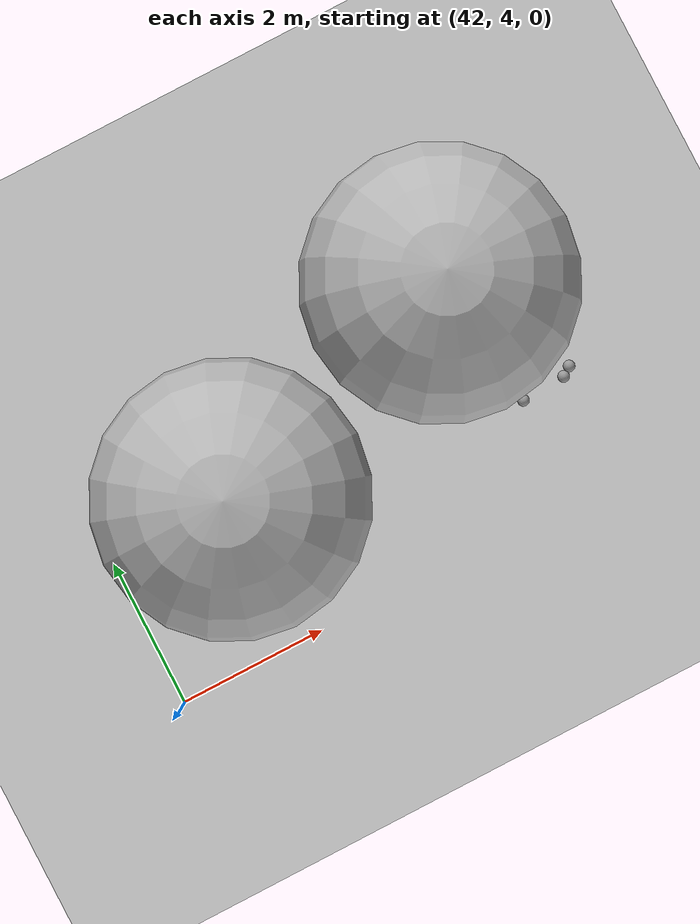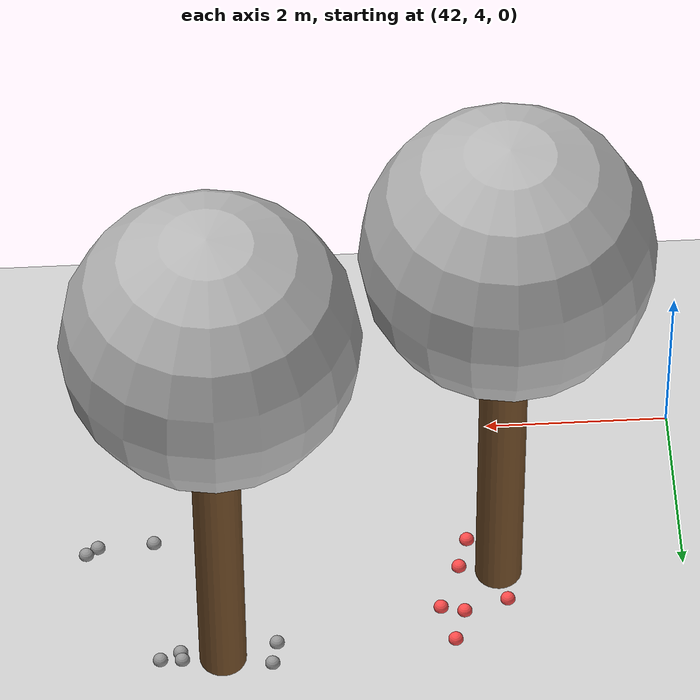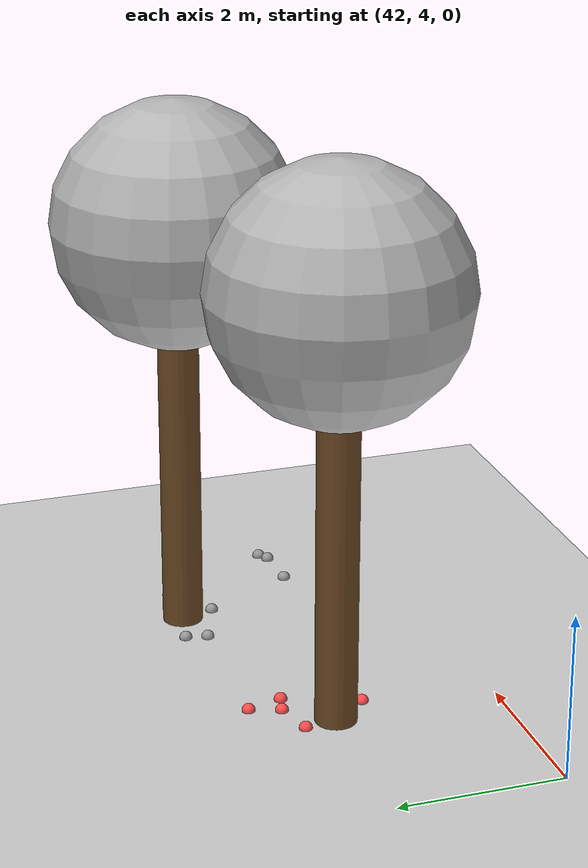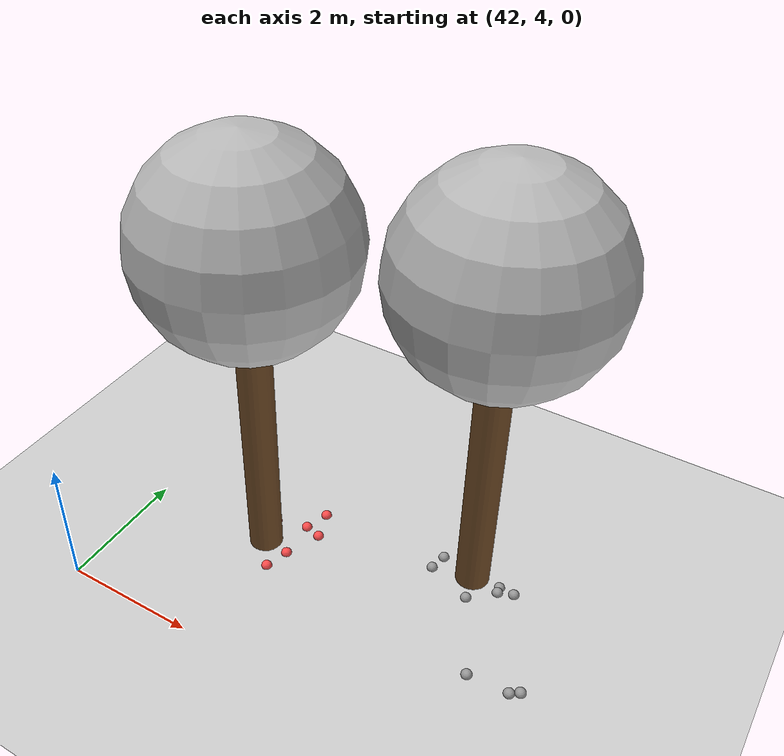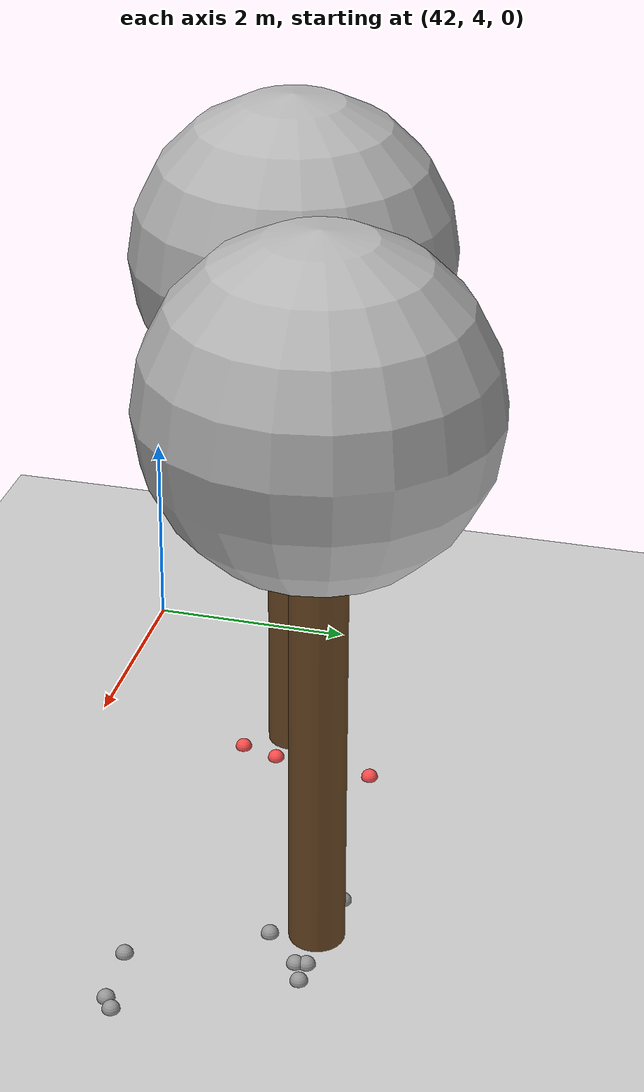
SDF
<sdf version="1.7">
 <world name="default">
  <model name="ground_plane">
   <static>1</static>
   <link name="link">
    <collision name="collision">
     <geometry><plane><normal>0 0 1</normal><size>100 100</size></plane></geometry>
     <surface>
      <contact><collide_bitmask>65535</collide_bitmask></contact>
      <friction><ode><mu>100</mu><mu2>50</mu2></ode></friction>
     </surface>
    </collision>
    <visual name="visual">
     <cast_shadows>0</cast_shadows>
     <geometry><plane><normal>0 0 1</normal><size>100 100</size></plane></geometry>
     <material>
      <script><uri>file://media/materials/scripts/gazebo.material</uri><name>Gazebo/Grey</name></script>
     </material>
    </visual>
   </link>
  </model>
  <model name="tree_simple_81">
   <static>1</static>
   <link name="link">
    <pose>0 0 0.1 0 -0 0</pose>
    <inertial>
     <mass>666</mass>
     <inertia>
      <ixx>0.0861167</ixx>
      <ixy>0</ixy>
      <ixz>0</ixz>
      <iyy>0.0861167</iyy>
      <iyz>0</iyz>
      <izz>0.0861167</izz>
     </inertia>
    </inertial>
    <collision name="collision_trunk">
     <pose>0 0 2 0 -0 0</pose>
     <geometry><cylinder><radius>0.25</radius><length>4</length></cylinder></geometry>
     <surface>
      <contact>
       <poissons_ratio>0.347</poissons_ratio>
       <elastic_modulus>8.8e+09</elastic_modulus>
       <ode><kp>100000</kp><kd>100</kd><max_vel>100</max_vel><min_depth>0.001</min_depth></ode>
      </contact>
      <friction>
       <torsional>
        <coefficient>1</coefficient>
        <use_patch_radius>0</use_patch_radius>
        <surface_radius>0.01</surface_radius>
       </torsional>
      </friction>
     </surface>
    </collision>
    <collision name="collision_treetop">
     <pose>0 0 5.2 0 -0 0</pose>
     <geometry><sphere><radius>1.5</radius></sphere></geometry>
     <surface>
      <contact>
       <poissons_ratio>0.347</poissons_ratio>
       <elastic_modulus>8.8e+09</elastic_modulus>
       <ode><kp>100000</kp><kd>100</kd><max_vel>100</max_vel><min_depth>0.001</min_depth></ode>
      </contact>
      <friction>
       <torsional>
        <coefficient>1</coefficient>
        <use_patch_radius>0</use_patch_radius>
        <surface_radius>0.01</surface_radius>
       </torsional>
      </friction>
     </surface>
    </collision>
    <visual name="trunk">
     <pose>0 0 2 0 -0 0</pose>
     <geometry><cylinder><radius>0.25</radius><length>4</length></cylinder></geometry>
     <material>
      <script>
       <uri>model://tree_simple/scripts</uri>
       <uri>model://tree_simple/materials/textures</uri>
       <name>TreeSimple/Trunk</name>
      </script>
     </material>
    </visual>
    <visual name="treetop">
     <pose>0 0 5.2 0 -0 0</pose>
     <geometry><sphere><radius>1.5</radius></sphere></geometry>
     <material>
      <script>
       <uri>model://tree_simple/scripts</uri>
       <uri>model://tree_simple/materials/textures</uri>
       <name>TreeSimple/Treetop</name>
      </script>
     </material>
    </visual>
   </link>
   <pose>47 7 -0.1 0 -0 0</pose>
  </model>
  <model name="tree_simple_82">
   <static>1</static>
   <link name="link">
    <pose>0 0 0.1 0 -0 0</pose>
    <inertial>
     <mass>666</mass>
     <inertia>
      <ixx>0.0861167</ixx>
      <ixy>0</ixy>
      <ixz>0</ixz>
      <iyy>0.0861167</iyy>
      <iyz>0</iyz>
      <izz>0.0861167</izz>
     </inertia>
    </inertial>
    <collision name="collision_trunk">
     <pose>0 0 2 0 -0 0</pose>
     <geometry><cylinder><radius>0.25</radius><length>4</length></cylinder></geometry>
     <surface>
      <contact>
       <poissons_ratio>0.347</poissons_ratio>
       <elastic_modulus>8.8e+09</elastic_modulus>
       <ode><kp>100000</kp><kd>100</kd><max_vel>100</max_vel><min_depth>0.001</min_depth></ode>
      </contact>
      <friction>
       <torsional>
        <coefficient>1</coefficient>
        <use_patch_radius>0</use_patch_radius>
        <surface_radius>0.01</surface_radius>
       </torsional>
      </friction>
     </surface>
    </collision>
    <collision name="collision_treetop">
     <pose>0 0 5.2 0 -0 0</pose>
     <geometry><sphere><radius>1.5</radius></sphere></geometry>
     <surface>
      <contact>
       <poissons_ratio>0.347</poissons_ratio>
       <elastic_modulus>8.8e+09</elastic_modulus>
       <ode><kp>100000</kp><kd>100</kd><max_vel>100</max_vel><min_depth>0.001</min_depth></ode>
      </contact>
      <friction>
       <torsional>
        <coefficient>1</coefficient>
        <use_patch_radius>0</use_patch_radius>
        <surface_radius>0.01</surface_radius>
       </torsional>
      </friction>
     </surface>
    </collision>
    <visual name="trunk">
     <pose>0 0 2 0 -0 0</pose>
     <geometry><cylinder><radius>0.25</radius><length>4</length></cylinder></geometry>
     <material>
      <script>
       <uri>model://tree_simple/scripts</uri>
       <uri>model://tree_simple/materials/textures</uri>
       <name>TreeSimple/Trunk</name>
      </script>
     </material>
    </visual>
    <visual name="treetop">
     <pose>0 0 5.2 0 -0 0</pose>
     <geometry><sphere><radius>1.5</radius></sphere></geometry>
     <material>
      <script>
       <uri>model://tree_simple/scripts</uri>
       <uri>model://tree_simple/materials/textures</uri>
       <name>TreeSimple/Treetop</name>
      </script>
     </material>
    </visual>
   </link>
   <pose>44 6 -0.1 0 -0 0</pose>
  </model>
  <model name="seed_black_72">
   <link name="link">
    <inertial>
     <mass>1</mass>
     <inertia><ixx>0.1</ixx><ixy>0</ixy><ixz>0</ixz><iyy>0.1</iyy><iyz>0</iyz><izz>0.1</izz></inertia>
    </inertial>
    <visual name="visual">
     <geometry><sphere><radius>0.08</radius></sphere></geometry>
     <material>
      <script><name>Gazebo/Grey</name><uri>file://media/materials/scripts/gazebo.material</uri></script>
      <shader type="pixel"><normal_map>__default__</normal_map></shader>
      <ambient>0 0 0 1</ambient>
      <diffuse>0.7 0.7 0.7 1</diffuse>
      <specular>0.01 0.01 0.01 1</specular>
      <emissive>0 0 0 1</emissive>
     </material>
    </visual>
    <collision name="collision">
     <geometry><sphere><radius>0.0005</radius></sphere></geometry>
     <surface>
      <friction>
       <ode><mu>1</mu><mu2>1</mu2><fdir1>0 0 0</fdir1><slip1>0</slip1><slip2>0</slip2></ode>
       <torsional>
        <coefficient>1</coefficient>
        <patch_radius>0</patch_radius>
        <surface_radius>0</surface_radius>
        <use_patch_radius>1</use_patch_radius>
        <ode><slip>0</slip></ode>
       </torsional>
      </friction>
      <bounce><restitution_coefficient>0</restitution_coefficient><threshold>1e+06</threshold></bounce>
      <contact>
       <collide_without_contact>0</collide_without_contact>
       <collide_without_contact_bitmask>1</collide_without_contact_bitmask>
       <collide_bitmask>1</collide_bitmask>
       <ode>
        <soft_cfm>0</soft_cfm>
        <soft_erp>0.2</soft_erp>
        <kp>1e+13</kp>
        <kd>1</kd>
        <max_vel>0.01</max_vel>
        <min_depth>0</min_depth>
       </ode>
       <bullet>
        <split_impulse>1</split_impulse>
        <split_impulse_penetration_threshold>-0.01</split_impulse_penetration_threshold>
        <soft_cfm>0</soft_cfm>
        <soft_erp>0.2</soft_erp>
        <kp>1e+13</kp>
        <kd>1</kd>
       </bullet>
      </contact>
     </surface>
    </collision>
   </link>
   <static>0</static>
   <pose>47.4486 6.92046 0.0005 0 -0 0</pose>
  </model>
  <model name="seed_black_73">
   <link name="link">
    <inertial>
     <mass>1</mass>
     <inertia><ixx>0.1</ixx><ixy>0</ixy><ixz>0</ixz><iyy>0.1</iyy><iyz>0</iyz><izz>0.1</izz></inertia>
    </inertial>
    <visual name="visual">
     <geometry><sphere><radius>0.08</radius></sphere></geometry>
     <material>
      <script><name>Gazebo/Grey</name><uri>file://media/materials/scripts/gazebo.material</uri></script>
      <shader type="pixel"><normal_map>__default__</normal_map></shader>
      <ambient>0 0 0 1</ambient>
      <diffuse>0.7 0.7 0.7 1</diffuse>
      <specular>0.01 0.01 0.01 1</specular>
      <emissive>0 0 0 1</emissive>
     </material>
    </visual>
    <collision name="collision">
     <geometry><sphere><radius>0.0005</radius></sphere></geometry>
     <surface>
      <friction>
       <ode><mu>1</mu><mu2>1</mu2><fdir1>0 0 0</fdir1><slip1>0</slip1><slip2>0</slip2></ode>
       <torsional>
        <coefficient>1</coefficient>
        <patch_radius>0</patch_radius>
        <surface_radius>0</surface_radius>
        <use_patch_radius>1</use_patch_radius>
        <ode><slip>0</slip></ode>
       </torsional>
      </friction>
      <bounce><restitution_coefficient>0</restitution_coefficient><threshold>1e+06</threshold></bounce>
      <contact>
       <collide_without_contact>0</collide_without_contact>
       <collide_without_contact_bitmask>1</collide_without_contact_bitmask>
       <collide_bitmask>1</collide_bitmask>
       <ode>
        <soft_cfm>0</soft_cfm>
        <soft_erp>0.2</soft_erp>
        <kp>1e+13</kp>
        <kd>1</kd>
        <max_vel>0.01</max_vel>
        <min_depth>0</min_depth>
       </ode>
       <bullet>
        <split_impulse>1</split_impulse>
        <split_impulse_penetration_threshold>-0.01</split_impulse_penetration_threshold>
        <soft_cfm>0</soft_cfm>
        <soft_erp>0.2</soft_erp>
        <kp>1e+13</kp>
        <kd>1</kd>
       </bullet>
      </contact>
     </surface>
    </collision>
   </link>
   <static>0</static>
   <pose>47.434 7.01858 0.0005 0 -0 0</pose>
  </model>
  <model name="seed_black_74">
   <link name="link">
    <inertial>
     <mass>1</mass>
     <inertia><ixx>0.1</ixx><ixy>0</ixy><ixz>0</ixz><iyy>0.1</iyy><iyz>0</iyz><izz>0.1</izz></inertia>
    </inertial>
    <visual name="visual">
     <geometry><sphere><radius>0.08</radius></sphere></geometry>
     <material>
      <script><name>Gazebo/Grey</name><uri>file://media/materials/scripts/gazebo.material</uri></script>
      <shader type="pixel"><normal_map>__default__</normal_map></shader>
      <ambient>0 0 0 1</ambient>
      <diffuse>0.7 0.7 0.7 1</diffuse>
      <specular>0.01 0.01 0.01 1</specular>
      <emissive>0 0 0 1</emissive>
     </material>
    </visual>
    <collision name="collision">
     <geometry><sphere><radius>0.0005</radius></sphere></geometry>
     <surface>
      <friction>
       <ode><mu>1</mu><mu2>1</mu2><fdir1>0 0 0</fdir1><slip1>0</slip1><slip2>0</slip2></ode>
       <torsional>
        <coefficient>1</coefficient>
        <patch_radius>0</patch_radius>
        <surface_radius>0</surface_radius>
        <use_patch_radius>1</use_patch_radius>
        <ode><slip>0</slip></ode>
       </torsional>
      </friction>
      <bounce><restitution_coefficient>0</restitution_coefficient><threshold>1e+06</threshold></bounce>
      <contact>
       <collide_without_contact>0</collide_without_contact>
       <collide_without_contact_bitmask>1</collide_without_contact_bitmask>
       <collide_bitmask>1</collide_bitmask>
       <ode>
        <soft_cfm>0</soft_cfm>
        <soft_erp>0.2</soft_erp>
        <kp>1e+13</kp>
        <kd>1</kd>
        <max_vel>0.01</max_vel>
        <min_depth>0</min_depth>
       </ode>
       <bullet>
        <split_impulse>1</split_impulse>
        <split_impulse_penetration_threshold>-0.01</split_impulse_penetration_threshold>
        <soft_cfm>0</soft_cfm>
        <soft_erp>0.2</soft_erp>
        <kp>1e+13</kp>
        <kd>1</kd>
       </bullet>
      </contact>
     </surface>
    </collision>
   </link>
   <static>0</static>
   <pose>46.4194 6.84191 0.0005 0 -0 0</pose>
  </model>
  <model name="seed_black_75">
   <link name="link">
    <inertial>
     <mass>1</mass>
     <inertia><ixx>0.1</ixx><ixy>0</ixy><ixz>0</ixz><iyy>0.1</iyy><iyz>0</iyz><izz>0.1</izz></inertia>
    </inertial>
    <visual name="visual">
     <geometry><sphere><radius>0.08</radius></sphere></geometry>
     <material>
      <script><name>Gazebo/Grey</name><uri>file://media/materials/scripts/gazebo.material</uri></script>
      <shader type="pixel"><normal_map>__default__</normal_map></shader>
      <ambient>0 0 0 1</ambient>
      <diffuse>0.7 0.7 0.7 1</diffuse>
      <specular>0.01 0.01 0.01 1</specular>
      <emissive>0 0 0 1</emissive>
     </material>
    </visual>
    <collision name="collision">
     <geometry><sphere><radius>0.0005</radius></sphere></geometry>
     <surface>
      <friction>
       <ode><mu>1</mu><mu2>1</mu2><fdir1>0 0 0</fdir1><slip1>0</slip1><slip2>0</slip2></ode>
       <torsional>
        <coefficient>1</coefficient>
        <patch_radius>0</patch_radius>
        <surface_radius>0</surface_radius>
        <use_patch_radius>1</use_patch_radius>
        <ode><slip>0</slip></ode>
       </torsional>
      </friction>
      <bounce><restitution_coefficient>0</restitution_coefficient><threshold>1e+06</threshold></bounce>
      <contact>
       <collide_without_contact>0</collide_without_contact>
       <collide_without_contact_bitmask>1</collide_without_contact_bitmask>
       <collide_bitmask>1</collide_bitmask>
       <ode>
        <soft_cfm>0</soft_cfm>
        <soft_erp>0.2</soft_erp>
        <kp>1e+13</kp>
        <kd>1</kd>
        <max_vel>0.01</max_vel>
        <min_depth>0</min_depth>
       </ode>
       <bullet>
        <split_impulse>1</split_impulse>
        <split_impulse_penetration_threshold>-0.01</split_impulse_penetration_threshold>
        <soft_cfm>0</soft_cfm>
        <soft_erp>0.2</soft_erp>
        <kp>1e+13</kp>
        <kd>1</kd>
       </bullet>
      </contact>
     </surface>
    </collision>
   </link>
   <static>0</static>
   <pose>47.099 6.5959 0.0005 0 -0 0</pose>
  </model>
  <model name="seed_black_76">
   <link name="link">
    <inertial>
     <mass>1</mass>
     <inertia><ixx>0.1</ixx><ixy>0</ixy><ixz>0</ixz><iyy>0.1</iyy><iyz>0</iyz><izz>0.1</izz></inertia>
    </inertial>
    <visual name="visual">
     <geometry><sphere><radius>0.08</radius></sphere></geometry>
     <material>
      <script><name>Gazebo/Grey</name><uri>file://media/materials/scripts/gazebo.material</uri></script>
      <shader type="pixel"><normal_map>__default__</normal_map></shader>
      <ambient>0 0 0 1</ambient>
      <diffuse>0.7 0.7 0.7 1</diffuse>
      <specular>0.01 0.01 0.01 1</specular>
      <emissive>0 0 0 1</emissive>
     </material>
    </visual>
    <collision name="collision">
     <geometry><sphere><radius>0.0005</radius></sphere></geometry>
     <surface>
      <friction>
       <ode><mu>1</mu><mu2>1</mu2><fdir1>0 0 0</fdir1><slip1>0</slip1><slip2>0</slip2></ode>
       <torsional>
        <coefficient>1</coefficient>
        <patch_radius>0</patch_radius>
        <surface_radius>0</surface_radius>
        <use_patch_radius>1</use_patch_radius>
        <ode><slip>0</slip></ode>
       </torsional>
      </friction>
      <bounce><restitution_coefficient>0</restitution_coefficient><threshold>1e+06</threshold></bounce>
      <contact>
       <collide_without_contact>0</collide_without_contact>
       <collide_without_contact_bitmask>1</collide_without_contact_bitmask>
       <collide_bitmask>1</collide_bitmask>
       <ode>
        <soft_cfm>0</soft_cfm>
        <soft_erp>0.2</soft_erp>
        <kp>1e+13</kp>
        <kd>1</kd>
        <max_vel>0.01</max_vel>
        <min_depth>0</min_depth>
       </ode>
       <bullet>
        <split_impulse>1</split_impulse>
        <split_impulse_penetration_threshold>-0.01</split_impulse_penetration_threshold>
        <soft_cfm>0</soft_cfm>
        <soft_erp>0.2</soft_erp>
        <kp>1e+13</kp>
        <kd>1</kd>
       </bullet>
      </contact>
     </surface>
    </collision>
   </link>
   <static>0</static>
   <pose>47.666 7.00919 0.0005 0 -0 0</pose>
  </model>
  <model name="seed_black_77">
   <link name="link">
    <inertial>
     <mass>1</mass>
     <inertia><ixx>0.1</ixx><ixy>0</ixy><ixz>0</ixz><iyy>0.1</iyy><iyz>0</iyz><izz>0.1</izz></inertia>
    </inertial>
    <visual name="visual">
     <geometry><sphere><radius>0.08</radius></sphere></geometry>
     <material>
      <script><name>Gazebo/Grey</name><uri>file://media/materials/scripts/gazebo.material</uri></script>
      <shader type="pixel"><normal_map>__default__</normal_map></shader>
      <ambient>0 0 0 1</ambient>
      <diffuse>0.7 0.7 0.7 1</diffuse>
      <specular>0.01 0.01 0.01 1</specular>
      <emissive>0 0 0 1</emissive>
     </material>
    </visual>
    <collision name="collision">
     <geometry><sphere><radius>0.0005</radius></sphere></geometry>
     <surface>
      <friction>
       <ode><mu>1</mu><mu2>1</mu2><fdir1>0 0 0</fdir1><slip1>0</slip1><slip2>0</slip2></ode>
       <torsional>
        <coefficient>1</coefficient>
        <patch_radius>0</patch_radius>
        <surface_radius>0</surface_radius>
        <use_patch_radius>1</use_patch_radius>
        <ode><slip>0</slip></ode>
       </torsional>
      </friction>
      <bounce><restitution_coefficient>0</restitution_coefficient><threshold>1e+06</threshold></bounce>
      <contact>
       <collide_without_contact>0</collide_without_contact>
       <collide_without_contact_bitmask>1</collide_without_contact_bitmask>
       <collide_bitmask>1</collide_bitmask>
       <ode>
        <soft_cfm>0</soft_cfm>
        <soft_erp>0.2</soft_erp>
        <kp>1e+13</kp>
        <kd>1</kd>
        <max_vel>0.01</max_vel>
        <min_depth>0</min_depth>
       </ode>
       <bullet>
        <split_impulse>1</split_impulse>
        <split_impulse_penetration_threshold>-0.01</split_impulse_penetration_threshold>
        <soft_cfm>0</soft_cfm>
        <soft_erp>0.2</soft_erp>
        <kp>1e+13</kp>
        <kd>1</kd>
       </bullet>
      </contact>
     </surface>
    </collision>
   </link>
   <static>0</static>
   <pose>46.4768 7.10921 0.0005 0 -0 0</pose>
  </model>
  <model name="seed_red_317">
   <link name="link">
    <inertial>
     <mass>1</mass>
     <inertia><ixx>0.1</ixx><ixy>0</ixy><ixz>0</ixz><iyy>0.1</iyy><iyz>0</iyz><izz>0.1</izz></inertia>
    </inertial>
    <visual name="visual">
     <geometry><sphere><radius>0.08</radius></sphere></geometry>
     <material>
      <script><name>Gazebo/Grey</name><uri>file://media/materials/scripts/gazebo.material</uri></script>
      <shader type="pixel"><normal_map>__default__</normal_map></shader>
      <ambient>1 0.3 0.3 1</ambient>
      <diffuse>0.7 0.7 0.7 1</diffuse>
      <specular>0.01 0.01 0.01 1</specular>
      <emissive>0 0 0 1</emissive>
     </material>
    </visual>
    <collision name="collision">
     <geometry><sphere><radius>0.0005</radius></sphere></geometry>
     <surface>
      <friction>
       <ode><mu>1</mu><mu2>1</mu2><fdir1>0 0 0</fdir1><slip1>0</slip1><slip2>0</slip2></ode>
       <torsional>
        <coefficient>1</coefficient>
        <patch_radius>0</patch_radius>
        <surface_radius>0</surface_radius>
        <use_patch_radius>1</use_patch_radius>
        <ode><slip>0</slip></ode>
       </torsional>
      </friction>
      <bounce><restitution_coefficient>0</restitution_coefficient><threshold>1e+06</threshold></bounce>
      <contact>
       <collide_without_contact>0</collide_without_contact>
       <collide_without_contact_bitmask>1</collide_without_contact_bitmask>
       <collide_bitmask>1</collide_bitmask>
       <ode>
        <soft_cfm>0</soft_cfm>
        <soft_erp>0.2</soft_erp>
        <kp>1e+13</kp>
        <kd>1</kd>
        <max_vel>0.01</max_vel>
        <min_depth>0</min_depth>
       </ode>
       <bullet>
        <split_impulse>1</split_impulse>
        <split_impulse_penetration_threshold>-0.01</split_impulse_penetration_threshold>
        <soft_cfm>0</soft_cfm>
        <soft_erp>0.2</soft_erp>
        <kp>1e+13</kp>
        <kd>1</kd>
       </bullet>
      </contact>
     </surface>
    </collision>
   </link>
   <static>0</static>
   <pose>44.515 6.89711 0.0005 0 -0 0</pose>
  </model>
  <model name="seed_red_321">
   <link name="link">
    <inertial>
     <mass>1</mass>
     <inertia><ixx>0.1</ixx><ixy>0</ixy><ixz>0</ixz><iyy>0.1</iyy><iyz>0</iyz><izz>0.1</izz></inertia>
    </inertial>
    <visual name="visual">
     <geometry><sphere><radius>0.08</radius></sphere></geometry>
     <material>
      <script><name>Gazebo/Grey</name><uri>file://media/materials/scripts/gazebo.material</uri></script>
      <shader type="pixel"><normal_map>__default__</normal_map></shader>
      <ambient>1 0.3 0.3 1</ambient>
      <diffuse>0.7 0.7 0.7 1</diffuse>
      <specular>0.01 0.01 0.01 1</specular>
      <emissive>0 0 0 1</emissive>
     </material>
    </visual>
    <collision name="collision">
     <geometry><sphere><radius>0.0005</radius></sphere></geometry>
     <surface>
      <friction>
       <ode><mu>1</mu><mu2>1</mu2><fdir1>0 0 0</fdir1><slip1>0</slip1><slip2>0</slip2></ode>
       <torsional>
        <coefficient>1</coefficient>
        <patch_radius>0</patch_radius>
        <surface_radius>0</surface_radius>
        <use_patch_radius>1</use_patch_radius>
        <ode><slip>0</slip></ode>
       </torsional>
      </friction>
      <bounce><restitution_coefficient>0</restitution_coefficient><threshold>1e+06</threshold></bounce>
      <contact>
       <collide_without_contact>0</collide_without_contact>
       <collide_without_contact_bitmask>1</collide_without_contact_bitmask>
       <collide_bitmask>1</collide_bitmask>
       <ode>
        <soft_cfm>0</soft_cfm>
        <soft_erp>0.2</soft_erp>
        <kp>1e+13</kp>
        <kd>1</kd>
        <max_vel>0.01</max_vel>
        <min_depth>0</min_depth>
       </ode>
       <bullet>
        <split_impulse>1</split_impulse>
        <split_impulse_penetration_threshold>-0.01</split_impulse_penetration_threshold>
        <soft_cfm>0</soft_cfm>
        <soft_erp>0.2</soft_erp>
        <kp>1e+13</kp>
        <kd>1</kd>
       </bullet>
      </contact>
     </surface>
    </collision>
   </link>
   <static>0</static>
   <pose>44.3135 5.56657 0.0005 0 -0 0</pose>
  </model>
  <model name="seed_red_322">
   <link name="link">
    <inertial>
     <mass>1</mass>
     <inertia><ixx>0.1</ixx><ixy>0</ixy><ixz>0</ixz><iyy>0.1</iyy><iyz>0</iyz><izz>0.1</izz></inertia>
    </inertial>
    <visual name="visual">
     <geometry><sphere><radius>0.08</radius></sphere></geometry>
     <material>
      <script><name>Gazebo/Grey</name><uri>file://media/materials/scripts/gazebo.material</uri></script>
      <shader type="pixel"><normal_map>__default__</normal_map></shader>
      <ambient>1 0.3 0.3 1</ambient>
      <diffuse>0.7 0.7 0.7 1</diffuse>
      <specular>0.01 0.01 0.01 1</specular>
      <emissive>0 0 0 1</emissive>
     </material>
    </visual>
    <collision name="collision">
     <geometry><sphere><radius>0.0005</radius></sphere></geometry>
     <surface>
      <friction>
       <ode><mu>1</mu><mu2>1</mu2><fdir1>0 0 0</fdir1><slip1>0</slip1><slip2>0</slip2></ode>
       <torsional>
        <coefficient>1</coefficient>
        <patch_radius>0</patch_radius>
        <surface_radius>0</surface_radius>
        <use_patch_radius>1</use_patch_radius>
        <ode><slip>0</slip></ode>
       </torsional>
      </friction>
      <bounce><restitution_coefficient>0</restitution_coefficient><threshold>1e+06</threshold></bounce>
      <contact>
       <collide_without_contact>0</collide_without_contact>
       <collide_without_contact_bitmask>1</collide_without_contact_bitmask>
       <collide_bitmask>1</collide_bitmask>
       <ode>
        <soft_cfm>0</soft_cfm>
        <soft_erp>0.2</soft_erp>
        <kp>1e+13</kp>
        <kd>1</kd>
        <max_vel>0.01</max_vel>
        <min_depth>0</min_depth>
       </ode>
       <bullet>
        <split_impulse>1</split_impulse>
        <split_impulse_penetration_threshold>-0.01</split_impulse_penetration_threshold>
        <soft_cfm>0</soft_cfm>
        <soft_erp>0.2</soft_erp>
        <kp>1e+13</kp>
        <kd>1</kd>
       </bullet>
      </contact>
     </surface>
    </collision>
   </link>
   <static>0</static>
   <pose>44.3955 6.52679 0.0005 0 -0 0</pose>
  </model>
  <model name="seed_red_323">
   <link name="link">
    <inertial>
     <mass>1</mass>
     <inertia><ixx>0.1</ixx><ixy>0</ixy><ixz>0</ixz><iyy>0.1</iyy><iyz>0</iyz><izz>0.1</izz></inertia>
    </inertial>
    <visual name="visual">
     <geometry><sphere><radius>0.08</radius></sphere></geometry>
     <material>
      <script><name>Gazebo/Grey</name><uri>file://media/materials/scripts/gazebo.material</uri></script>
      <shader type="pixel"><normal_map>__default__</normal_map></shader>
      <ambient>1 0.3 0.3 1</ambient>
      <diffuse>0.7 0.7 0.7 1</diffuse>
      <specular>0.01 0.01 0.01 1</specular>
      <emissive>0 0 0 1</emissive>
     </material>
    </visual>
    <collision name="collision">
     <geometry><sphere><radius>0.0005</radius></sphere></geometry>
     <surface>
      <friction>
       <ode><mu>1</mu><mu2>1</mu2><fdir1>0 0 0</fdir1><slip1>0</slip1><slip2>0</slip2></ode>
       <torsional>
        <coefficient>1</coefficient>
        <patch_radius>0</patch_radius>
        <surface_radius>0</surface_radius>
        <use_patch_radius>1</use_patch_radius>
        <ode><slip>0</slip></ode>
       </torsional>
      </friction>
      <bounce><restitution_coefficient>0</restitution_coefficient><threshold>1e+06</threshold></bounce>
      <contact>
       <collide_without_contact>0</collide_without_contact>
       <collide_without_contact_bitmask>1</collide_without_contact_bitmask>
       <collide_bitmask>1</collide_bitmask>
       <ode>
        <soft_cfm>0</soft_cfm>
        <soft_erp>0.2</soft_erp>
        <kp>1e+13</kp>
        <kd>1</kd>
        <max_vel>0.01</max_vel>
        <min_depth>0</min_depth>
       </ode>
       <bullet>
        <split_impulse>1</split_impulse>
        <split_impulse_penetration_threshold>-0.01</split_impulse_penetration_threshold>
        <soft_cfm>0</soft_cfm>
        <soft_erp>0.2</soft_erp>
        <kp>1e+13</kp>
        <kd>1</kd>
       </bullet>
      </contact>
     </surface>
    </collision>
   </link>
   <static>0</static>
   <pose>44.4213 5.9285 0.0005 0 -0 0</pose>
  </model>
  <model name="seed_red_324">
   <link name="link">
    <inertial>
     <mass>1</mass>
     <inertia><ixx>0.1</ixx><ixy>0</ixy><ixz>0</ixz><iyy>0.1</iyy><iyz>0</iyz><izz>0.1</izz></inertia>
    </inertial>
    <visual name="visual">
     <geometry><sphere><radius>0.08</radius></sphere></geometry>
     <material>
      <script><name>Gazebo/Grey</name><uri>file://media/materials/scripts/gazebo.material</uri></script>
      <shader type="pixel"><normal_map>__default__</normal_map></shader>
      <ambient>1 0.3 0.3 1</ambient>
      <diffuse>0.7 0.7 0.7 1</diffuse>
      <specular>0.01 0.01 0.01 1</specular>
      <emissive>0 0 0 1</emissive>
     </material>
    </visual>
    <collision name="collision">
     <geometry><sphere><radius>0.0005</radius></sphere></geometry>
     <surface>
      <friction>
       <ode><mu>1</mu><mu2>1</mu2><fdir1>0 0 0</fdir1><slip1>0</slip1><slip2>0</slip2></ode>
       <torsional>
        <coefficient>1</coefficient>
        <patch_radius>0</patch_radius>
        <surface_radius>0</surface_radius>
        <use_patch_radius>1</use_patch_radius>
        <ode><slip>0</slip></ode>
       </torsional>
      </friction>
      <bounce><restitution_coefficient>0</restitution_coefficient><threshold>1e+06</threshold></bounce>
      <contact>
       <collide_without_contact>0</collide_without_contact>
       <collide_without_contact_bitmask>1</collide_without_contact_bitmask>
       <collide_bitmask>1</collide_bitmask>
       <ode>
        <soft_cfm>0</soft_cfm>
        <soft_erp>0.2</soft_erp>
        <kp>1e+13</kp>
        <kd>1</kd>
        <max_vel>0.01</max_vel>
        <min_depth>0</min_depth>
       </ode>
       <bullet>
        <split_impulse>1</split_impulse>
        <split_impulse_penetration_threshold>-0.01</split_impulse_penetration_threshold>
        <soft_cfm>0</soft_cfm>
        <soft_erp>0.2</soft_erp>
        <kp>1e+13</kp>
        <kd>1</kd>
       </bullet>
      </contact>
     </surface>
    </collision>
   </link>
   <static>0</static>
   <pose>43.9244 6.39171 0.0005 0 -0 0</pose>
  </model>
  <model name="seed_red_326">
   <link name="link">
    <inertial>
     <mass>1</mass>
     <inertia><ixx>0.1</ixx><ixy>0</ixy><ixz>0</ixz><iyy>0.1</iyy><iyz>0</iyz><izz>0.1</izz></inertia>
    </inertial>
    <visual name="visual">
     <geometry><sphere><radius>0.08</radius></sphere></geometry>
     <material>
      <script><name>Gazebo/Grey</name><uri>file://media/materials/scripts/gazebo.material</uri></script>
      <shader type="pixel"><normal_map>__default__</normal_map></shader>
      <ambient>1 0.3 0.3 1</ambient>
      <diffuse>0.7 0.7 0.7 1</diffuse>
      <specular>0.01 0.01 0.01 1</specular>
      <emissive>0 0 0 1</emissive>
     </material>
    </visual>
    <collision name="collision">
     <geometry><sphere><radius>0.0005</radius></sphere></geometry>
     <surface>
      <friction>
       <ode><mu>1</mu><mu2>1</mu2><fdir1>0 0 0</fdir1><slip1>0</slip1><slip2>0</slip2></ode>
       <torsional>
        <coefficient>1</coefficient>
        <patch_radius>0</patch_radius>
        <surface_radius>0</surface_radius>
        <use_patch_radius>1</use_patch_radius>
        <ode><slip>0</slip></ode>
       </torsional>
      </friction>
      <bounce><restitution_coefficient>0</restitution_coefficient><threshold>1e+06</threshold></bounce>
      <contact>
       <collide_without_contact>0</collide_without_contact>
       <collide_without_contact_bitmask>1</collide_without_contact_bitmask>
       <collide_bitmask>1</collide_bitmask>
       <ode>
        <soft_cfm>0</soft_cfm>
        <soft_erp>0.2</soft_erp>
        <kp>1e+13</kp>
        <kd>1</kd>
        <max_vel>0.01</max_vel>
        <min_depth>0</min_depth>
       </ode>
       <bullet>
        <split_impulse>1</split_impulse>
        <split_impulse_penetration_threshold>-0.01</split_impulse_penetration_threshold>
        <soft_cfm>0</soft_cfm>
        <soft_erp>0.2</soft_erp>
        <kp>1e+13</kp>
        <kd>1</kd>
       </bullet>
      </contact>
     </surface>
    </collision>
   </link>
   <static>0</static>
   <pose>44.6465 6.46401 0.0005 0 -0 0</pose>
  </model>
  <model name="seed_black_80">
   <link name="link">
    <inertial>
     <mass>1</mass>
     <inertia><ixx>0.1</ixx><ixy>0</ixy><ixz>0</ixz><iyy>0.1</iyy><iyz>0</iyz><izz>0.1</izz></inertia>
    </inertial>
    <visual name="visual">
     <geometry><sphere><radius>0.08</radius></sphere></geometry>
     <material>
      <script><name>Gazebo/Grey</name><uri>file://media/materials/scripts/gazebo.material</uri></script>
      <shader type="pixel"><normal_map>__default__</normal_map></shader>
      <ambient>0 0 0 1</ambient>
      <diffuse>0.7 0.7 0.7 1</diffuse>
      <specular>0.01 0.01 0.01 1</specular>
      <emissive>0 0 0 1</emissive>
     </material>
    </visual>
    <collision name="collision">
     <geometry><sphere><radius>0.0005</radius></sphere></geometry>
     <surface>
      <friction>
       <ode><mu>1</mu><mu2>1</mu2><fdir1>0 0 0</fdir1><slip1>0</slip1><slip2>0</slip2></ode>
       <torsional>
        <coefficient>1</coefficient>
        <patch_radius>0</patch_radius>
        <surface_radius>0</surface_radius>
        <use_patch_radius>1</use_patch_radius>
        <ode><slip>0</slip></ode>
       </torsional>
      </friction>
      <bounce><restitution_coefficient>0</restitution_coefficient><threshold>1e+06</threshold></bounce>
      <contact>
       <collide_without_contact>0</collide_without_contact>
       <collide_without_contact_bitmask>1</collide_without_contact_bitmask>
       <collide_bitmask>1</collide_bitmask>
       <ode>
        <soft_cfm>0</soft_cfm>
        <soft_erp>0.2</soft_erp>
        <kp>1e+13</kp>
        <kd>1</kd>
        <max_vel>0.01</max_vel>
        <min_depth>0</min_depth>
       </ode>
       <bullet>
        <split_impulse>1</split_impulse>
        <split_impulse_penetration_threshold>-0.01</split_impulse_penetration_threshold>
        <soft_cfm>0</soft_cfm>
        <soft_erp>0.2</soft_erp>
        <kp>1e+13</kp>
        <kd>1</kd>
       </bullet>
      </contact>
     </surface>
    </collision>
   </link>
   <static>0</static>
   <pose>48.3024 5.46921 0.0005 0 -0 0</pose>
  </model>
  <model name="seed_black_81">
   <link name="link">
    <inertial>
     <mass>1</mass>
     <inertia><ixx>0.1</ixx><ixy>0</ixy><ixz>0</ixz><iyy>0.1</iyy><iyz>0</iyz><izz>0.1</izz></inertia>
    </inertial>
    <visual name="visual">
     <geometry><sphere><radius>0.08</radius></sphere></geometry>
     <material>
      <script><name>Gazebo/Grey</name><uri>file://media/materials/scripts/gazebo.material</uri></script>
      <shader type="pixel"><normal_map>__default__</normal_map></shader>
      <ambient>0 0 0 1</ambient>
      <diffuse>0.7 0.7 0.7 1</diffuse>
      <specular>0.01 0.01 0.01 1</specular>
      <emissive>0 0 0 1</emissive>
     </material>
    </visual>
    <collision name="collision">
     <geometry><sphere><radius>0.0005</radius></sphere></geometry>
     <surface>
      <friction>
       <ode><mu>1</mu><mu2>1</mu2><fdir1>0 0 0</fdir1><slip1>0</slip1><slip2>0</slip2></ode>
       <torsional>
        <coefficient>1</coefficient>
        <patch_radius>0</patch_radius>
        <surface_radius>0</surface_radius>
        <use_patch_radius>1</use_patch_radius>
        <ode><slip>0</slip></ode>
       </torsional>
      </friction>
      <bounce><restitution_coefficient>0</restitution_coefficient><threshold>1e+06</threshold></bounce>
      <contact>
       <collide_without_contact>0</collide_without_contact>
       <collide_without_contact_bitmask>1</collide_without_contact_bitmask>
       <collide_bitmask>1</collide_bitmask>
       <ode>
        <soft_cfm>0</soft_cfm>
        <soft_erp>0.2</soft_erp>
        <kp>1e+13</kp>
        <kd>1</kd>
        <max_vel>0.01</max_vel>
        <min_depth>0</min_depth>
       </ode>
       <bullet>
        <split_impulse>1</split_impulse>
        <split_impulse_penetration_threshold>-0.01</split_impulse_penetration_threshold>
        <soft_cfm>0</soft_cfm>
        <soft_erp>0.2</soft_erp>
        <kp>1e+13</kp>
        <kd>1</kd>
       </bullet>
      </contact>
     </surface>
    </collision>
   </link>
   <static>0</static>
   <pose>48.4286 5.55635 0.0005 0 -0 0</pose>
  </model>
  <model name="seed_black_82">
   <link name="link">
    <inertial>
     <mass>1</mass>
     <inertia><ixx>0.1</ixx><ixy>0</ixy><ixz>0</ixz><iyy>0.1</iyy><iyz>0</iyz><izz>0.1</izz></inertia>
    </inertial>
    <visual name="visual">
     <geometry><sphere><radius>0.08</radius></sphere></geometry>
     <material>
      <script><name>Gazebo/Grey</name><uri>file://media/materials/scripts/gazebo.material</uri></script>
      <shader type="pixel"><normal_map>__default__</normal_map></shader>
      <ambient>0 0 0 1</ambient>
      <diffuse>0.7 0.7 0.7 1</diffuse>
      <specular>0.01 0.01 0.01 1</specular>
      <emissive>0 0 0 1</emissive>
     </material>
    </visual>
    <collision name="collision">
     <geometry><sphere><radius>0.0005</radius></sphere></geometry>
     <surface>
      <friction>
       <ode><mu>1</mu><mu2>1</mu2><fdir1>0 0 0</fdir1><slip1>0</slip1><slip2>0</slip2></ode>
       <torsional>
        <coefficient>1</coefficient>
        <patch_radius>0</patch_radius>
        <surface_radius>0</surface_radius>
        <use_patch_radius>1</use_patch_radius>
        <ode><slip>0</slip></ode>
       </torsional>
      </friction>
      <bounce><restitution_coefficient>0</restitution_coefficient><threshold>1e+06</threshold></bounce>
      <contact>
       <collide_without_contact>0</collide_without_contact>
       <collide_without_contact_bitmask>1</collide_without_contact_bitmask>
       <collide_bitmask>1</collide_bitmask>
       <ode>
        <soft_cfm>0</soft_cfm>
        <soft_erp>0.2</soft_erp>
        <kp>1e+13</kp>
        <kd>1</kd>
        <max_vel>0.01</max_vel>
        <min_depth>0</min_depth>
       </ode>
       <bullet>
        <split_impulse>1</split_impulse>
        <split_impulse_penetration_threshold>-0.01</split_impulse_penetration_threshold>
        <soft_cfm>0</soft_cfm>
        <soft_erp>0.2</soft_erp>
        <kp>1e+13</kp>
        <kd>1</kd>
       </bullet>
      </contact>
     </surface>
    </collision>
   </link>
   <static>0</static>
   <pose>47.6951 5.4362 0.0005 0 -0 0</pose>
  </model>
 </world>
</sdf>
